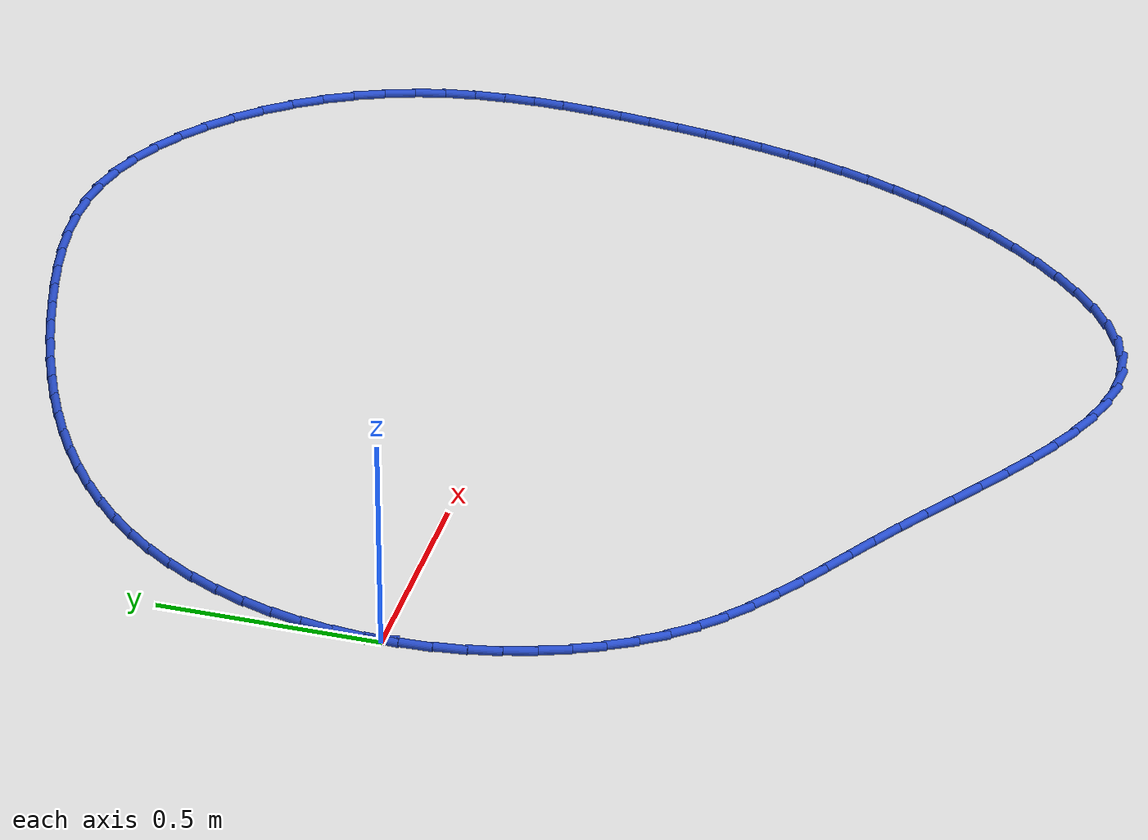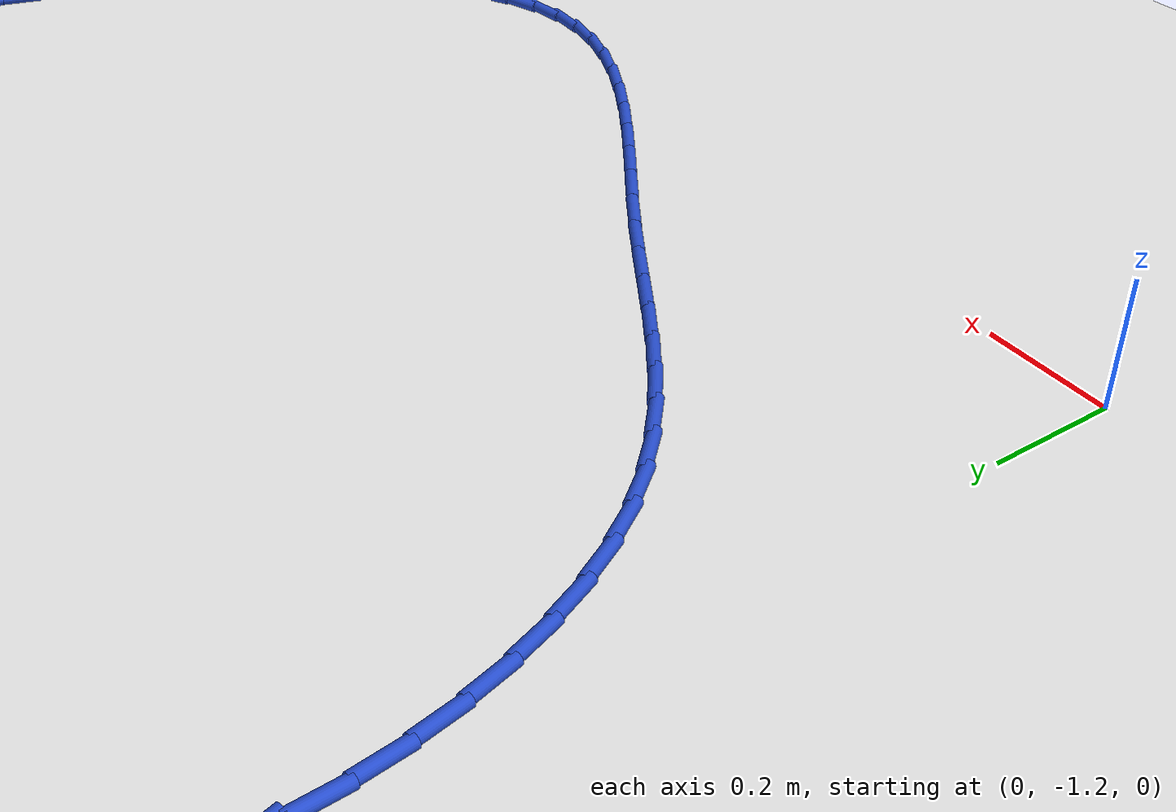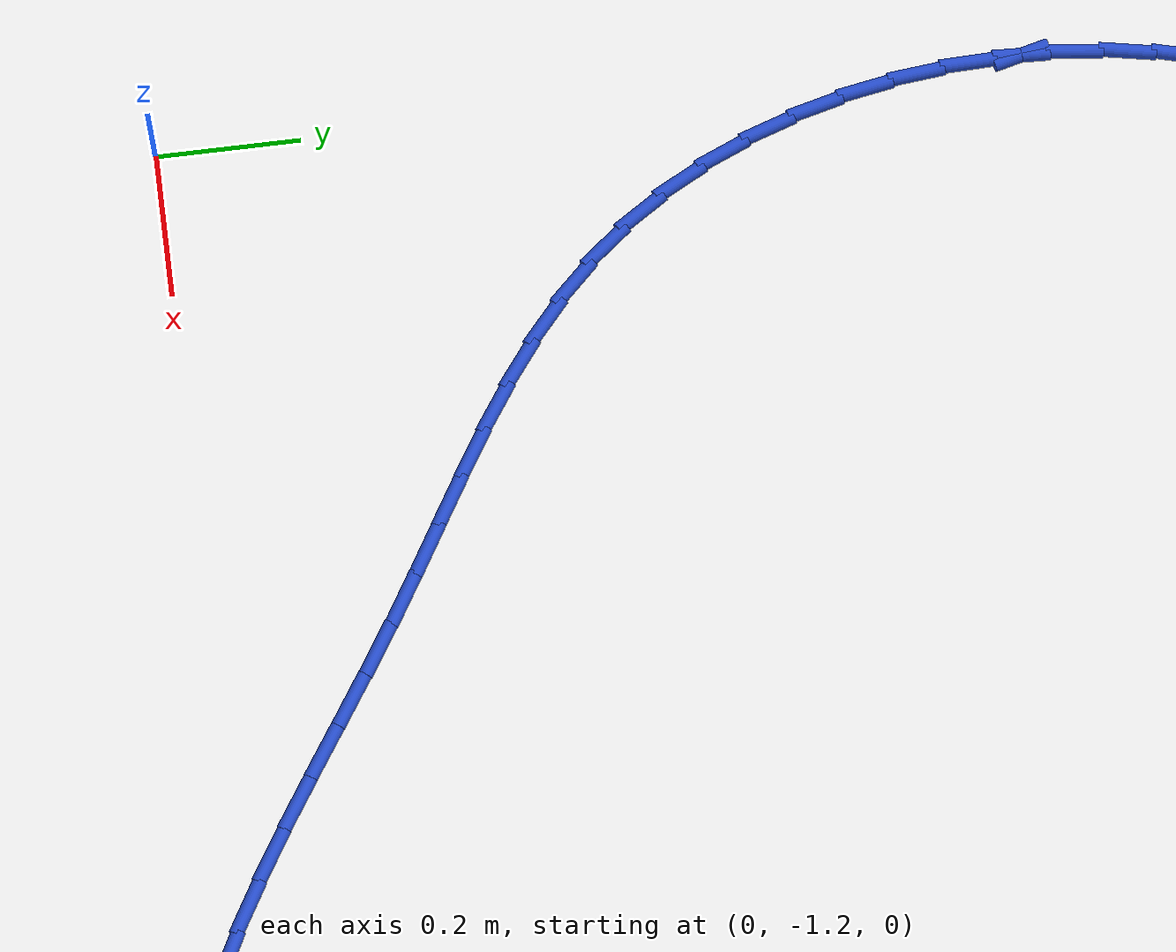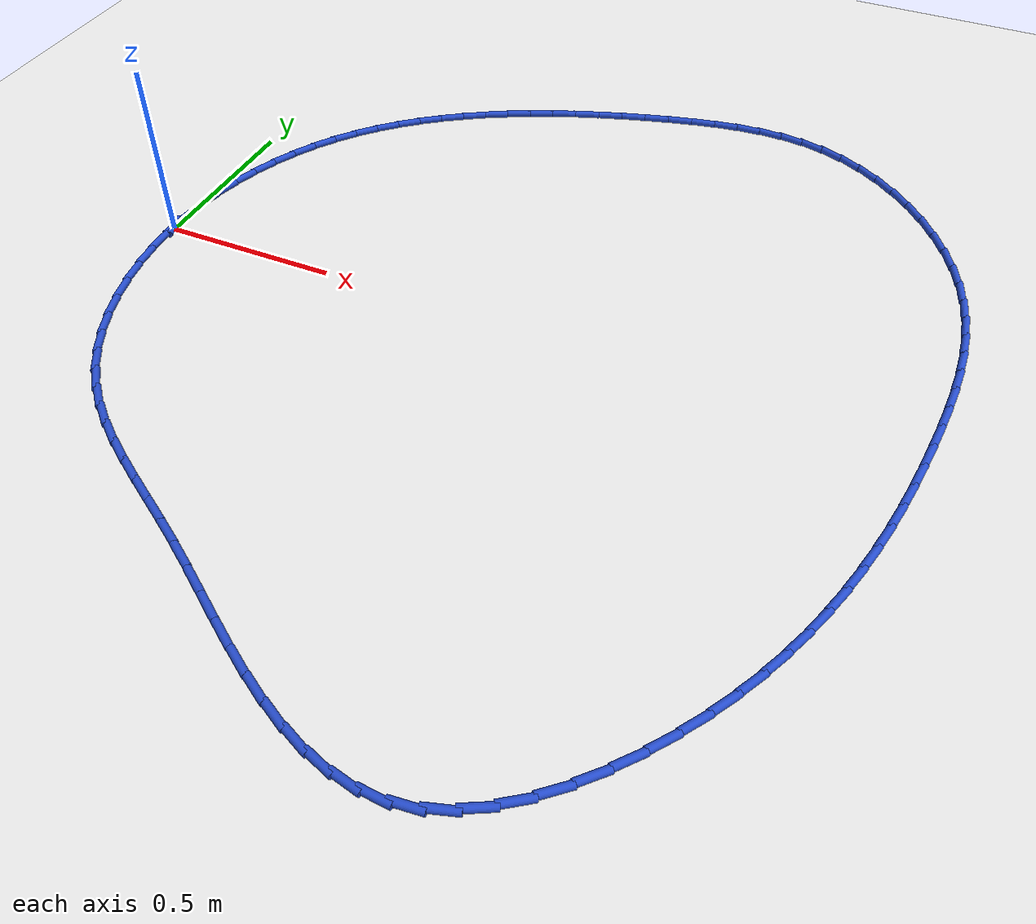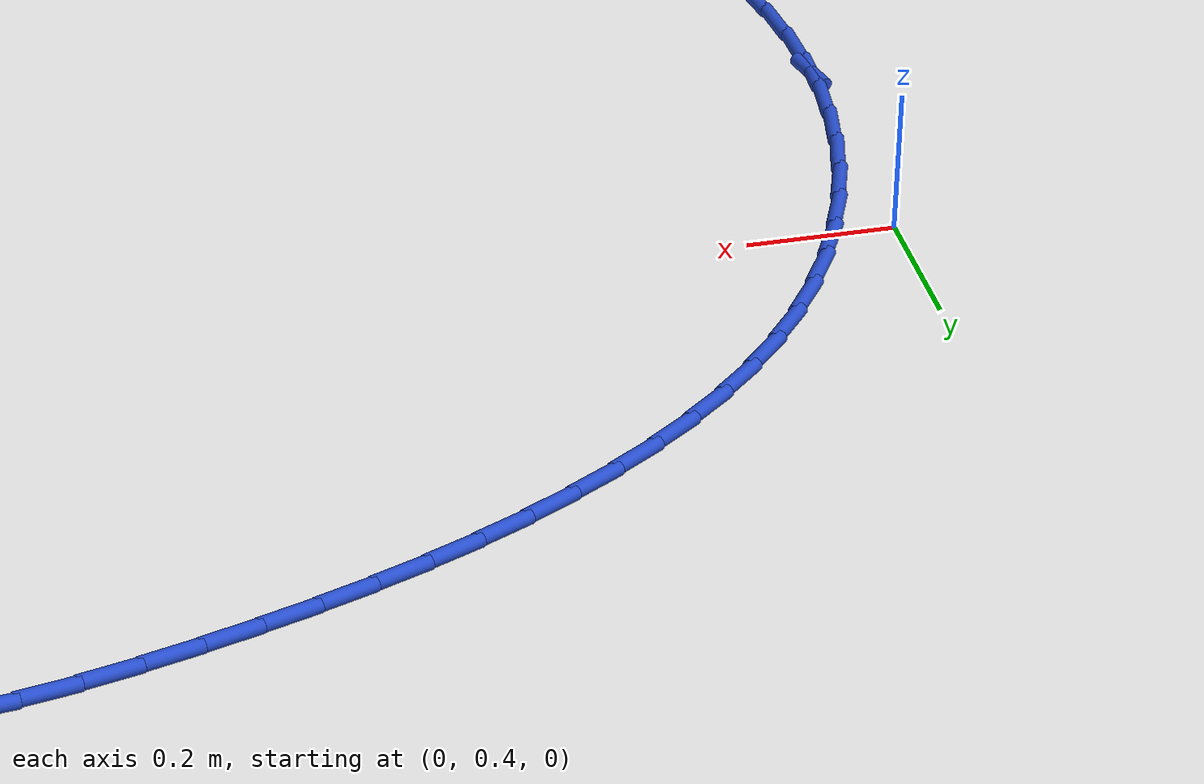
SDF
<sdf version="1.6">
 <world name="default">
  <light name="sun" type="directional">
   <pose>0 0 10 0 -0 0</pose>
   <diffuse>0.8 0.8 0.8 1</diffuse>
   <specular>0.2 0.2 0.2 1</specular>
   <attenuation>
    <range>1000</range>
    <constant>0.9</constant>
    <linear>0.01</linear>
    <quadratic>0.001</quadratic>
   </attenuation>
   <direction>-0.5 0.1 -0.9</direction>
  </light>
  <model name="ground_plane">
   <static>1</static>
   <link name="link">
    <collision name="collision">
     <geometry><plane><normal>0 0 1</normal><size>100 100</size></plane></geometry>
     <surface><friction><ode><mu>100</mu><mu2>50</mu2></ode></friction></surface>
    </collision>
    <visual name="visual">
     <cast_shadows>0</cast_shadows>
     <geometry><plane><normal>0 0 1</normal><size>100 100</size></plane></geometry>
     <material>
      <script><uri>file://media/materials/scripts/gazebo.material</uri><name>Gazebo/WhiteGlow</name></script>
     </material>
    </visual>
   </link>
  </model>
  <gravity>0 0 -9.8</gravity>
  <magnetic_field>6e-06 2.3e-05 -4.2e-05</magnetic_field>
  <atmosphere type="adiabatic"/>
  <physics name="default_physics" default="0" type="ode">
   <max_step_size>0.001</max_step_size>
   <real_time_factor>1</real_time_factor>
   <real_time_update_rate>1000</real_time_update_rate>
  </physics>
  <scene><ambient>0.4 0.4 0.4 1</ambient><background>0.7 0.7 0.7 1</background><shadows>1</shadows></scene>
  <spherical_coordinates>
   <surface_model>EARTH_WGS84</surface_model>
   <latitude_deg>0</latitude_deg>
   <longitude_deg>0</longitude_deg>
   <elevation>0</elevation>
   <heading_deg>0</heading_deg>
  </spherical_coordinates>
  <model name="line">
   <link name="link_0">
    <pose>5.204170427930421e-17 -1.3877787807814457e-16 0.01 0 1.57 1.5282746486067327</pose>
    <collision name="collision">
     <geometry><cylinder><radius>0.01</radius><length>0.08</length></cylinder></geometry>
    </collision>
    <visual name="visual">
     <material>
      <script><name>Gazebo/Blue</name><uri>file://media/materials/scripts/gazebo.material</uri></script>
     </material>
     <geometry><cylinder><radius>0.01</radius><length>0.08</length></cylinder></geometry>
    </visual>
   </link>
   <link name="link_1">
    <pose>0.0031259805209163873 0.07347067203384619 0.01 0 1.57 1.4564774518279162</pose>
    <collision name="collision">
     <geometry><cylinder><radius>0.01</radius><length>0.08</length></cylinder></geometry>
    </collision>
    <visual name="visual">
     <material>
      <script><name>Gazebo/Blue</name><uri>file://media/materials/scripts/gazebo.material</uri></script>
     </material>
     <geometry><cylinder><radius>0.01</radius><length>0.08</length></cylinder></geometry>
    </visual>
   </link>
   <link name="link_2">
    <pose>0.011472570870635196 0.1461638178170815 0.01 0 1.57 1.385574243071723</pose>
    <collision name="collision">
     <geometry><cylinder><radius>0.01</radius><length>0.08</length></cylinder></geometry>
    </collision>
    <visual name="visual">
     <material>
      <script><name>Gazebo/Blue</name><uri>file://media/materials/scripts/gazebo.material</uri></script>
     </material>
     <geometry><cylinder><radius>0.01</radius><length>0.08</length></cylinder></geometry>
    </visual>
   </link>
   <link name="link_3">
    <pose>0.024881129676199827 0.2177258577842038 0.01 0 1.57 1.3152019780598738</pose>
    <collision name="collision">
     <geometry><cylinder><radius>0.01</radius><length>0.08</length></cylinder></geometry>
    </collision>
    <visual name="visual">
     <material>
      <script><name>Gazebo/Blue</name><uri>file://media/materials/scripts/gazebo.material</uri></script>
     </material>
     <geometry><cylinder><radius>0.01</radius><length>0.08</length></cylinder></geometry>
    </visual>
   </link>
   <link name="link_4">
    <pose>0.04319301556465361 0.2878032123697115 0.01 0 1.57 1.244960053088595</pose>
    <collision name="collision">
     <geometry><cylinder><radius>0.01</radius><length>0.08</length></cylinder></geometry>
    </collision>
    <visual name="visual">
     <material>
      <script><name>Gazebo/Blue</name><uri>file://media/materials/scripts/gazebo.material</uri></script>
     </material>
     <geometry><cylinder><radius>0.01</radius><length>0.08</length></cylinder></geometry>
    </visual>
   </link>
   <link name="link_5">
    <pose>0.06624958716303983 0.35604230200810255 0.01 0 1.57 1.1744203381392162</pose>
    <collision name="collision">
     <geometry><cylinder><radius>0.01</radius><length>0.08</length></cylinder></geometry>
    </collision>
    <visual name="visual">
     <material>
      <script><name>Gazebo/Blue</name><uri>file://media/materials/scripts/gazebo.material</uri></script>
     </material>
     <geometry><cylinder><radius>0.01</radius><length>0.08</length></cylinder></geometry>
    </visual>
   </link>
   <link name="link_6">
    <pose>0.09389220309840185 0.42208954713387553 0.01 0 1.57 1.1031366561948694</pose>
    <collision name="collision">
     <geometry><cylinder><radius>0.01</radius><length>0.08</length></cylinder></geometry>
    </collision>
    <visual name="visual">
     <material>
      <script><name>Gazebo/Blue</name><uri>file://media/materials/scripts/gazebo.material</uri></script>
     </material>
     <geometry><cylinder><radius>0.01</radius><length>0.08</length></cylinder></geometry>
    </visual>
   </link>
   <link name="link_7">
    <pose>0.125962221997783 0.4855913681815285 0.01 0 1.57 1.0306548393821087</pose>
    <collision name="collision">
     <geometry><cylinder><radius>0.01</radius><length>0.08</length></cylinder></geometry>
    </collision>
    <visual name="visual">
     <material>
      <script><name>Gazebo/Blue</name><uri>file://media/materials/scripts/gazebo.material</uri></script>
     </material>
     <geometry><cylinder><radius>0.01</radius><length>0.08</length></cylinder></geometry>
    </visual>
   </link>
   <link name="link_8">
    <pose>0.16230100248822654 0.5461941855855594 0.01 0 1.57 0.956543772856191</pose>
    <collision name="collision">
     <geometry><cylinder><radius>0.01</radius><length>0.08</length></cylinder></geometry>
    </collision>
    <visual name="visual">
     <material>
      <script><name>Gazebo/Blue</name><uri>file://media/materials/scripts/gazebo.material</uri></script>
     </material>
     <geometry><cylinder><radius>0.01</radius><length>0.08</length></cylinder></geometry>
    </visual>
   </link>
   <link name="link_9">
    <pose>0.20274952972571073 0.6035462101387121 0.01 0 1.57 0.8822351133639581</pose>
    <collision name="collision">
     <geometry><cylinder><radius>0.01</radius><length>0.08</length></cylinder></geometry>
    </collision>
    <visual name="visual">
     <material>
      <script><name>Gazebo/Blue</name><uri>file://media/materials/scripts/gazebo.material</uri></script>
     </material>
     <geometry><cylinder><radius>0.01</radius><length>0.08</length></cylinder></geometry>
    </visual>
   </link>
   <link name="link_10">
    <pose>0.24711486292834084 0.65745828794414 0.01 0 1.57 0.8111999064492</pose>
    <collision name="collision">
     <geometry><cylinder><radius>0.01</radius><length>0.08</length></cylinder></geometry>
    </collision>
    <visual name="visual">
     <material>
      <script><name>Gazebo/Blue</name><uri>file://media/materials/scripts/gazebo.material</uri></script>
     </material>
     <geometry><cylinder><radius>0.01</radius><length>0.08</length></cylinder></geometry>
    </visual>
   </link>
   <link name="link_11">
    <pose>0.2951434990279077 0.7080315906450225 0.01 0 1.57 0.74426242111142</pose>
    <collision name="collision">
     <geometry><cylinder><radius>0.01</radius><length>0.08</length></cylinder></geometry>
    </collision>
    <visual name="visual">
     <material>
      <script><name>Gazebo/Blue</name><uri>file://media/materials/scripts/gazebo.material</uri></script>
     </material>
     <geometry><cylinder><radius>0.01</radius><length>0.08</length></cylinder></geometry>
    </visual>
   </link>
   <link name="link_12">
    <pose>0.34657566671254064 0.7553973388033759 0.01 0 1.57 0.6817254920975843</pose>
    <collision name="collision">
     <geometry><cylinder><radius>0.01</radius><length>0.08</length></cylinder></geometry>
    </collision>
    <visual name="visual">
     <material>
      <script><name>Gazebo/Blue</name><uri>file://media/materials/scripts/gazebo.material</uri></script>
     </material>
     <geometry><cylinder><radius>0.01</radius><length>0.08</length></cylinder></geometry>
    </visual>
   </link>
   <link name="link_13">
    <pose>0.40115159467036915 0.799686752981217 0.01 0 1.57 0.6237153595870962</pose>
    <collision name="collision">
     <geometry><cylinder><radius>0.01</radius><length>0.08</length></cylinder></geometry>
    </collision>
    <visual name="visual">
     <material>
      <script><name>Gazebo/Blue</name><uri>file://media/materials/scripts/gazebo.material</uri></script>
     </material>
     <geometry><cylinder><radius>0.01</radius><length>0.08</length></cylinder></geometry>
    </visual>
   </link>
   <link name="link_14">
    <pose>0.4586115115895223 0.8410310537405623 0.01 0 1.57 0.570216642949273</pose>
    <collision name="collision">
     <geometry><cylinder><radius>0.01</radius><length>0.08</length></cylinder></geometry>
    </collision>
    <visual name="visual">
     <material>
      <script><name>Gazebo/Blue</name><uri>file://media/materials/scripts/gazebo.material</uri></script>
     </material>
     <geometry><cylinder><radius>0.01</radius><length>0.08</length></cylinder></geometry>
    </visual>
   </link>
   <link name="link_15">
    <pose>0.5186956461581296 0.8795614616434282 0.01 0 1.57 0.5211095307602811</pose>
    <collision name="collision">
     <geometry><cylinder><radius>0.01</radius><length>0.08</length></cylinder></geometry>
    </collision>
    <visual name="visual">
     <material>
      <script><name>Gazebo/Blue</name><uri>file://media/materials/scripts/gazebo.material</uri></script>
     </material>
     <geometry><cylinder><radius>0.01</radius><length>0.08</length></cylinder></geometry>
    </visual>
   </link>
   <link name="link_16">
    <pose>0.5811442270643205 0.9154091972518315 0.01 0 1.57 0.47620407167577583</pose>
    <collision name="collision">
     <geometry><cylinder><radius>0.01</radius><length>0.08</length></cylinder></geometry>
    </collision>
    <visual name="visual">
     <material>
      <script><name>Gazebo/Blue</name><uri>file://media/materials/scripts/gazebo.material</uri></script>
     </material>
     <geometry><cylinder><radius>0.01</radius><length>0.08</length></cylinder></geometry>
    </visual>
   </link>
   <link name="link_17">
    <pose>0.6456974829962242 0.9487054811277882 0.01 0 1.57 0.4352689224941862</pose>
    <collision name="collision">
     <geometry><cylinder><radius>0.01</radius><length>0.08</length></cylinder></geometry>
    </collision>
    <visual name="visual">
     <material>
      <script><name>Gazebo/Blue</name><uri>file://media/materials/scripts/gazebo.material</uri></script>
     </material>
     <geometry><cylinder><radius>0.01</radius><length>0.08</length></cylinder></geometry>
    </visual>
   </link>
   <link name="link_18">
    <pose>0.71209564264197 0.9795815338333156 0.01 0 1.57 0.39805378848423967</pose>
    <collision name="collision">
     <geometry><cylinder><radius>0.01</radius><length>0.08</length></cylinder></geometry>
    </collision>
    <visual name="visual">
     <material>
      <script><name>Gazebo/Blue</name><uri>file://media/materials/scripts/gazebo.material</uri></script>
     </material>
     <geometry><cylinder><radius>0.01</radius><length>0.08</length></cylinder></geometry>
    </visual>
   </link>
   <link name="link_19">
    <pose>0.7800789346896874 1.0081685759304293 0.01 0 1.57 0.36430594841003583</pose>
    <collision name="collision">
     <geometry><cylinder><radius>0.01</radius><length>0.08</length></cylinder></geometry>
    </collision>
    <visual name="visual">
     <material>
      <script><name>Gazebo/Blue</name><uri>file://media/materials/scripts/gazebo.material</uri></script>
     </material>
     <geometry><cylinder><radius>0.01</radius><length>0.08</length></cylinder></geometry>
    </visual>
   </link>
   <link name="link_20">
    <pose>0.8493875878275057 1.034597827981147 0.01 0 1.57 0.3337818168983868</pose>
    <collision name="collision">
     <geometry><cylinder><radius>0.01</radius><length>0.08</length></cylinder></geometry>
    </collision>
    <visual name="visual">
     <material>
      <script><name>Gazebo/Blue</name><uri>file://media/materials/scripts/gazebo.material</uri></script>
     </material>
     <geometry><cylinder><radius>0.01</radius><length>0.08</length></cylinder></geometry>
    </visual>
   </link>
   <link name="link_21">
    <pose>0.919761830743554 1.059000510547484 0.01 0 1.57 0.30625465897065135</pose>
    <collision name="collision">
     <geometry><cylinder><radius>0.01</radius><length>0.08</length></cylinder></geometry>
    </collision>
    <visual name="visual">
     <material>
      <script><name>Gazebo/Blue</name><uri>file://media/materials/scripts/gazebo.material</uri></script>
     </material>
     <geometry><cylinder><radius>0.01</radius><length>0.08</length></cylinder></geometry>
    </visual>
   </link>
   <link name="link_22">
    <pose>0.9909418921259621 1.0815078441914578 0.01 0 1.57 0.2815195139172139</pose>
    <collision name="collision">
     <geometry><cylinder><radius>0.01</radius><length>0.08</length></cylinder></geometry>
    </collision>
    <visual name="visual">
     <material>
      <script><name>Gazebo/Blue</name><uri>file://media/materials/scripts/gazebo.material</uri></script>
     </material>
     <geometry><cylinder><radius>0.01</radius><length>0.08</length></cylinder></geometry>
    </visual>
   </link>
   <link name="link_23">
    <pose>1.0626680006628593 1.1022510494750846 0.01 0 1.57 0.2574677701609442</pose>
    <collision name="collision">
     <geometry><cylinder><radius>0.01</radius><length>0.08</length></cylinder></geometry>
    </collision>
    <visual name="visual">
     <material>
      <script><name>Gazebo/Blue</name><uri>file://media/materials/scripts/gazebo.material</uri></script>
     </material>
     <geometry><cylinder><radius>0.01</radius><length>0.08</length></cylinder></geometry>
    </visual>
   </link>
   <link name="link_24">
    <pose>1.134681080705358 1.1212129527023074 0.01 0 1.57 0.22415353122111004</pose>
    <collision name="collision">
     <geometry><cylinder><radius>0.01</radius><length>0.08</length></cylinder></geometry>
    </collision>
    <visual name="visual">
     <material>
      <script><name>Gazebo/Blue</name><uri>file://media/materials/scripts/gazebo.material</uri></script>
     </material>
     <geometry><cylinder><radius>0.01</radius><length>0.08</length></cylinder></geometry>
    </visual>
   </link>
   <link name="link_25">
    <pose>1.206725518157257 1.1376379844956195 0.01 0 1.57 0.17776304194682113</pose>
    <collision name="collision">
     <geometry><cylinder><radius>0.01</radius><length>0.08</length></cylinder></geometry>
    </collision>
    <visual name="visual">
     <material>
      <script><name>Gazebo/Blue</name><uri>file://media/materials/scripts/gazebo.material</uri></script>
     </material>
     <geometry><cylinder><radius>0.01</radius><length>0.08</length></cylinder></geometry>
    </visual>
   </link>
   <link name="link_26">
    <pose>1.2785467735138696 1.1505413506745805 0.01 0 1.57 0.11715683430781651</pose>
    <collision name="collision">
     <geometry><cylinder><radius>0.01</radius><length>0.08</length></cylinder></geometry>
    </collision>
    <visual name="visual">
     <material>
      <script><name>Gazebo/Blue</name><uri>file://media/materials/scripts/gazebo.material</uri></script>
     </material>
     <geometry><cylinder><radius>0.01</radius><length>0.08</length></cylinder></geometry>
    </visual>
   </link>
   <link name="link_27">
    <pose>1.3498903076035111 1.1589381860244536 0.01 0 1.57 0.041123762725608665</pose>
    <collision name="collision">
     <geometry><cylinder><radius>0.01</radius><length>0.08</length></cylinder></geometry>
    </collision>
    <visual name="visual">
     <material>
      <script><name>Gazebo/Blue</name><uri>file://media/materials/scripts/gazebo.material</uri></script>
     </material>
     <geometry><cylinder><radius>0.01</radius><length>0.08</length></cylinder></geometry>
    </visual>
   </link>
   <link name="link_28">
    <pose>1.4205015812544988 1.1618436253305033 0.01 0 1.57 -0.05124198212710654</pose>
    <collision name="collision">
     <geometry><cylinder><radius>0.01</radius><length>0.08</length></cylinder></geometry>
    </collision>
    <visual name="visual">
     <material>
      <script><name>Gazebo/Blue</name><uri>file://media/materials/scripts/gazebo.material</uri></script>
     </material>
     <geometry><cylinder><radius>0.01</radius><length>0.08</length></cylinder></geometry>
    </visual>
   </link>
   <link name="link_29">
    <pose>1.4901260552951479 1.1582728033779928 0.01 0 1.57 -0.15994747885380636</pose>
    <collision name="collision">
     <geometry><cylinder><radius>0.01</radius><length>0.08</length></cylinder></geometry>
    </collision>
    <visual name="visual">
     <material>
      <script><name>Gazebo/Blue</name><uri>file://media/materials/scripts/gazebo.material</uri></script>
     </material>
     <geometry><cylinder><radius>0.01</radius><length>0.08</length></cylinder></geometry>
    </visual>
   </link>
   <link name="link_30">
    <pose>1.5585091905537758 1.1472408549521862 0.01 0 1.57 -0.28207133014288555</pose>
    <collision name="collision">
     <geometry><cylinder><radius>0.01</radius><length>0.08</length></cylinder></geometry>
    </collision>
    <visual name="visual">
     <material>
      <script><name>Gazebo/Blue</name><uri>file://media/materials/scripts/gazebo.material</uri></script>
     </material>
     <geometry><cylinder><radius>0.01</radius><length>0.08</length></cylinder></geometry>
    </visual>
   </link>
   <link name="link_31">
    <pose>1.6253840059137574 1.127860649239747 0.01 0 1.57 -0.4016474988131272</pose>
    <collision name="collision">
     <geometry><cylinder><radius>0.01</radius><length>0.08</length></cylinder></geometry>
    </collision>
    <visual name="visual">
     <material>
      <script><name>Gazebo/Blue</name><uri>file://media/materials/scripts/gazebo.material</uri></script>
     </material>
     <geometry><cylinder><radius>0.01</radius><length>0.08</length></cylinder></geometry>
    </visual>
   </link>
   <link name="link_32">
    <pose>1.690353589624437 1.100265691091654 0.01 0 1.57 -0.5107105799660021</pose>
    <collision name="collision">
     <geometry><cylinder><radius>0.01</radius><length>0.08</length></cylinder></geometry>
    </collision>
    <visual name="visual">
     <material>
      <script><name>Gazebo/Blue</name><uri>file://media/materials/scripts/gazebo.material</uri></script>
     </material>
     <geometry><cylinder><radius>0.01</radius><length>0.08</length></cylinder></geometry>
    </visual>
   </link>
   <link name="link_33">
    <pose>1.7529436968279741 1.0651969550892868 0.01 0 1.57 -0.6104869087190389</pose>
    <collision name="collision">
     <geometry><cylinder><radius>0.01</radius><length>0.08</length></cylinder></geometry>
    </collision>
    <visual name="visual">
     <material>
      <script><name>Gazebo/Blue</name><uri>file://media/materials/scripts/gazebo.material</uri></script>
     </material>
     <geometry><cylinder><radius>0.01</radius><length>0.08</length></cylinder></geometry>
    </visual>
   </link>
   <link name="link_34">
    <pose>1.8126790564329207 1.0234034771201719 0.01 0 1.57 -0.7026864456503243</pose>
    <collision name="collision">
     <geometry><cylinder><radius>0.01</radius><length>0.08</length></cylinder></geometry>
    </collision>
    <visual name="visual">
     <material>
      <script><name>Gazebo/Blue</name><uri>file://media/materials/scripts/gazebo.material</uri></script>
     </material>
     <geometry><cylinder><radius>0.01</radius><length>0.08</length></cylinder></geometry>
    </visual>
   </link>
   <link name="link_35">
    <pose>1.8690843973478293 0.9756342930718348 0.01 0 1.57 -0.7891464266619932</pose>
    <collision name="collision">
     <geometry><cylinder><radius>0.01</radius><length>0.08</length></cylinder></geometry>
    </collision>
    <visual name="visual">
     <material>
      <script><name>Gazebo/Blue</name><uri>file://media/materials/scripts/gazebo.material</uri></script>
     </material>
     <geometry><cylinder><radius>0.01</radius><length>0.08</length></cylinder></geometry>
    </visual>
   </link>
   <link name="link_36">
    <pose>1.9216844484812525 0.9226384388318032 0.01 0 1.57 -0.8717106496504525</pose>
    <collision name="collision">
     <geometry><cylinder><radius>0.01</radius><length>0.08</length></cylinder></geometry>
    </collision>
    <visual name="visual">
     <material>
      <script><name>Gazebo/Blue</name><uri>file://media/materials/scripts/gazebo.material</uri></script>
     </material>
     <geometry><cylinder><radius>0.01</radius><length>0.08</length></cylinder></geometry>
    </visual>
   </link>
   <link name="link_37">
    <pose>1.9700039387417436 0.8651649502876019 0.01 0 1.57 -0.9521945838586038</pose>
    <collision name="collision">
     <geometry><cylinder><radius>0.01</radius><length>0.08</length></cylinder></geometry>
    </collision>
    <visual name="visual">
     <material>
      <script><name>Gazebo/Blue</name><uri>file://media/materials/scripts/gazebo.material</uri></script>
     </material>
     <geometry><cylinder><radius>0.01</radius><length>0.08</length></cylinder></geometry>
    </visual>
   </link>
   <link name="link_38">
    <pose>2.013567597037855 0.8039628633267578 0.01 0 1.57 -1.0324005913723173</pose>
    <collision name="collision">
     <geometry><cylinder><radius>0.01</radius><length>0.08</length></cylinder></geometry>
    </collision>
    <visual name="visual">
     <material>
      <script><name>Gazebo/Blue</name><uri>file://media/materials/scripts/gazebo.material</uri></script>
     </material>
     <geometry><cylinder><radius>0.01</radius><length>0.08</length></cylinder></geometry>
    </visual>
   </link>
   <link name="link_39">
    <pose>2.051900152278139 0.7397812138367974 0.01 0 1.57 -1.1141586374636674</pose>
    <collision name="collision">
     <geometry><cylinder><radius>0.01</radius><length>0.08</length></cylinder></geometry>
    </collision>
    <visual name="visual">
     <material>
      <script><name>Gazebo/Blue</name><uri>file://media/materials/scripts/gazebo.material</uri></script>
     </material>
     <geometry><cylinder><radius>0.01</radius><length>0.08</length></cylinder></geometry>
    </visual>
   </link>
   <link name="link_40">
    <pose>2.084526333371148 0.6733690377052464 0.01 0 1.57 -1.1992003343789637</pose>
    <collision name="collision">
     <geometry><cylinder><radius>0.01</radius><length>0.08</length></cylinder></geometry>
    </collision>
    <visual name="visual">
     <material>
      <script><name>Gazebo/Blue</name><uri>file://media/materials/scripts/gazebo.material</uri></script>
     </material>
     <geometry><cylinder><radius>0.01</radius><length>0.08</length></cylinder></geometry>
    </visual>
   </link>
   <link name="link_41">
    <pose>2.1109881745813 0.6054659977010682 0.01 0 1.57 -1.283935200608638</pose>
    <collision name="collision">
     <geometry><cylinder><radius>0.01</radius><length>0.08</length></cylinder></geometry>
    </collision>
    <visual name="visual">
     <material>
      <script><name>Gazebo/Blue</name><uri>file://media/materials/scripts/gazebo.material</uri></script>
     </material>
     <geometry><cylinder><radius>0.01</radius><length>0.08</length></cylinder></geometry>
    </visual>
   </link>
   <link name="link_42">
    <pose>2.13131960460642 0.5365453312806873 0.01 0 1.57 -1.3619491720528112</pose>
    <collision name="collision">
     <geometry><cylinder><radius>0.01</radius><length>0.08</length></cylinder></geometry>
    </collision>
    <visual name="visual">
     <material>
      <script><name>Gazebo/Blue</name><uri>file://media/materials/scripts/gazebo.material</uri></script>
     </material>
     <geometry><cylinder><radius>0.01</radius><length>0.08</length></cylinder></geometry>
    </visual>
   </link>
   <link name="link_43">
    <pose>2.1461050488459885 0.4667821097782295 0.01 0 1.57 -1.431833304214325</pose>
    <collision name="collision">
     <geometry><cylinder><radius>0.01</radius><length>0.08</length></cylinder></geometry>
    </collision>
    <visual name="visual">
     <material>
      <script><name>Gazebo/Blue</name><uri>file://media/materials/scripts/gazebo.material</uri></script>
     </material>
     <geometry><cylinder><radius>0.01</radius><length>0.08</length></cylinder></geometry>
    </visual>
   </link>
   <link name="link_44">
    <pose>2.155958005076219 0.39633565802505133 0.01 0 1.57 -1.4929780508990451</pose>
    <collision name="collision">
     <geometry><cylinder><radius>0.01</radius><length>0.08</length></cylinder></geometry>
    </collision>
    <visual name="visual">
     <material>
      <script><name>Gazebo/Blue</name><uri>file://media/materials/scripts/gazebo.material</uri></script>
     </material>
     <geometry><cylinder><radius>0.01</radius><length>0.08</length></cylinder></geometry>
    </visual>
   </link>
   <link name="link_45">
    <pose>2.1614919710733287 0.32536530085250903 0.01 0 1.57 -1.5451697080182984</pose>
    <collision name="collision">
     <geometry><cylinder><radius>0.01</radius><length>0.08</length></cylinder></geometry>
    </collision>
    <visual name="visual">
     <material>
      <script><name>Gazebo/Blue</name><uri>file://media/materials/scripts/gazebo.material</uri></script>
     </material>
     <geometry><cylinder><radius>0.01</radius><length>0.08</length></cylinder></geometry>
    </visual>
   </link>
   <link name="link_46">
    <pose>2.163320444613532 0.2540303630919587 0.01 0 1.57 1.5531364670164305</pose>
    <collision name="collision">
     <geometry><cylinder><radius>0.01</radius><length>0.08</length></cylinder></geometry>
    </collision>
    <visual name="visual">
     <material>
      <script><name>Gazebo/Blue</name><uri>file://media/materials/scripts/gazebo.material</uri></script>
     </material>
     <geometry><cylinder><radius>0.01</radius><length>0.08</length></cylinder></geometry>
    </visual>
   </link>
   <link name="link_47">
    <pose>2.162056923473044 0.1824901695747564 0.01 0 1.57 1.5185709081920795</pose>
    <collision name="collision">
     <geometry><cylinder><radius>0.01</radius><length>0.08</length></cylinder></geometry>
    </collision>
    <visual name="visual">
     <material>
      <script><name>Gazebo/Blue</name><uri>file://media/materials/scripts/gazebo.material</uri></script>
     </material>
     <geometry><cylinder><radius>0.01</radius><length>0.08</length></cylinder></geometry>
    </visual>
   </link>
   <link name="link_48">
    <pose>2.1583149054280817 0.11090404513225881 0.01 0 1.57 1.4925069305116105</pose>
    <collision name="collision">
     <geometry><cylinder><radius>0.01</radius><length>0.08</length></cylinder></geometry>
    </collision>
    <visual name="visual">
     <material>
      <script><name>Gazebo/Blue</name><uri>file://media/materials/scripts/gazebo.material</uri></script>
     </material>
     <geometry><cylinder><radius>0.01</radius><length>0.08</length></cylinder></geometry>
    </visual>
   </link>
   <link name="link_49">
    <pose>2.1527078882548594 0.03943131459582119 0.01 0 1.57 1.4740513847124126</pose>
    <collision name="collision">
     <geometry><cylinder><radius>0.01</radius><length>0.08</length></cylinder></geometry>
    </collision>
    <visual name="visual">
     <material>
      <script><name>Gazebo/Blue</name><uri>file://media/materials/scripts/gazebo.material</uri></script>
     </material>
     <geometry><cylinder><radius>0.01</radius><length>0.08</length></cylinder></geometry>
    </visual>
   </link>
   <link name="link_50">
    <pose>2.145797348805127 -0.03177619157703565 0.01 0 1.57 1.456381025645525</pose>
    <collision name="collision">
     <geometry><cylinder><radius>0.01</radius><length>0.08</length></cylinder></geometry>
    </collision>
    <visual name="visual">
     <material>
      <script><name>Gazebo/Blue</name><uri>file://media/materials/scripts/gazebo.material</uri></script>
     </material>
     <geometry><cylinder><radius>0.01</radius><length>0.08</length></cylinder></geometry>
    </visual>
   </link>
   <link name="link_51">
    <pose>2.1376541870035015 -0.10263731769908503 0.01 0 1.57 1.4357621455923701</pose>
    <collision name="collision">
     <geometry><cylinder><radius>0.01</radius><length>0.08</length></cylinder></geometry>
    </collision>
    <visual name="visual">
     <material>
      <script><name>Gazebo/Blue</name><uri>file://media/materials/scripts/gazebo.material</uri></script>
     </material>
     <geometry><cylinder><radius>0.01</radius><length>0.08</length></cylinder></geometry>
    </visual>
   </link>
   <link name="link_52">
    <pose>2.128079735618127 -0.1731097431685043 0.01 0 1.57 1.4121340106648255</pose>
    <collision name="collision">
     <geometry><cylinder><radius>0.01</radius><length>0.08</length></cylinder></geometry>
    </collision>
    <visual name="visual">
     <material>
      <script><name>Gazebo/Blue</name><uri>file://media/materials/scripts/gazebo.material</uri></script>
     </material>
     <geometry><cylinder><radius>0.01</radius><length>0.08</length></cylinder></geometry>
    </visual>
   </link>
   <link name="link_53">
    <pose>2.1168725399724533 -0.2431515489555842 0.01 0 1.57 1.3854878548615126</pose>
    <collision name="collision">
     <geometry><cylinder><radius>0.01</radius><length>0.08</length></cylinder></geometry>
    </collision>
    <visual name="visual">
     <material>
      <script><name>Gazebo/Blue</name><uri>file://media/materials/scripts/gazebo.material</uri></script>
     </material>
     <geometry><cylinder><radius>0.01</radius><length>0.08</length></cylinder></geometry>
    </visual>
   </link>
   <link name="link_54">
    <pose>2.103831145389932 -0.3127208160306157 0.01 0 1.57 1.3558351742822496</pose>
    <collision name="collision">
     <geometry><cylinder><radius>0.01</radius><length>0.08</length></cylinder></geometry>
    </collision>
    <visual name="visual">
     <material>
      <script><name>Gazebo/Blue</name><uri>file://media/materials/scripts/gazebo.material</uri></script>
     </material>
     <geometry><cylinder><radius>0.01</radius><length>0.08</length></cylinder></geometry>
    </visual>
   </link>
   <link name="link_55">
    <pose>2.088754097194014 -0.3817756253638894 0.01 0 1.57 1.3232149477645139</pose>
    <collision name="collision">
     <geometry><cylinder><radius>0.01</radius><length>0.08</length></cylinder></geometry>
    </collision>
    <visual name="visual">
     <material>
      <script><name>Gazebo/Blue</name><uri>file://media/materials/scripts/gazebo.material</uri></script>
     </material>
     <geometry><cylinder><radius>0.01</radius><length>0.08</length></cylinder></geometry>
    </visual>
   </link>
   <link name="link_56">
    <pose>2.0714399407081485 -0.45027405792569625 0.01 0 1.57 1.2877011878988722</pose>
    <collision name="collision">
     <geometry><cylinder><radius>0.01</radius><length>0.08</length></cylinder></geometry>
    </collision>
    <visual name="visual">
     <material>
      <script><name>Gazebo/Blue</name><uri>file://media/materials/scripts/gazebo.material</uri></script>
     </material>
     <geometry><cylinder><radius>0.01</radius><length>0.08</length></cylinder></geometry>
    </visual>
   </link>
   <link name="link_57">
    <pose>2.0516872212557877 -0.518174194686327 0.01 0 1.57 1.2494102713392787</pose>
    <collision name="collision">
     <geometry><cylinder><radius>0.01</radius><length>0.08</length></cylinder></geometry>
    </collision>
    <visual name="visual">
     <material>
      <script><name>Gazebo/Blue</name><uri>file://media/materials/scripts/gazebo.material</uri></script>
     </material>
     <geometry><cylinder><radius>0.01</radius><length>0.08</length></cylinder></geometry>
    </visual>
   </link>
   <link name="link_58">
    <pose>2.0292944841603817 -0.5854341166160719 0.01 0 1.57 1.2085073028194984</pose>
    <collision name="collision">
     <geometry><cylinder><radius>0.01</radius><length>0.08</length></cylinder></geometry>
    </collision>
    <visual name="visual">
     <material>
      <script><name>Gazebo/Blue</name><uri>file://media/materials/scripts/gazebo.material</uri></script>
     </material>
     <geometry><cylinder><radius>0.01</radius><length>0.08</length></cylinder></geometry>
    </visual>
   </link>
   <link name="link_59">
    <pose>2.00406027474538 -0.6520119046852229 0.01 0 1.57 1.16521061592618</pose>
    <collision name="collision">
     <geometry><cylinder><radius>0.01</radius><length>0.08</length></cylinder></geometry>
    </collision>
    <visual name="visual">
     <material>
      <script><name>Gazebo/Blue</name><uri>file://media/materials/scripts/gazebo.material</uri></script>
     </material>
     <geometry><cylinder><radius>0.01</radius><length>0.08</length></cylinder></geometry>
    </visual>
   </link>
   <link name="link_60">
    <pose>1.9757831383342346 -0.7178656398640701 0.01 0 1.57 1.1197934641353782</pose>
    <collision name="collision">
     <geometry><cylinder><radius>0.01</radius><length>0.08</length></cylinder></geometry>
    </collision>
    <visual name="visual">
     <material>
      <script><name>Gazebo/Blue</name><uri>file://media/materials/scripts/gazebo.material</uri></script>
     </material>
     <geometry><cylinder><radius>0.01</radius><length>0.08</length></cylinder></geometry>
    </visual>
   </link>
   <link name="link_61">
    <pose>1.9442616202503953 -0.7829534031229047 0.01 0 1.57 1.0725820669029316</pose>
    <collision name="collision">
     <geometry><cylinder><radius>0.01</radius><length>0.08</length></cylinder></geometry>
    </collision>
    <visual name="visual">
     <material>
      <script><name>Gazebo/Blue</name><uri>file://media/materials/scripts/gazebo.material</uri></script>
     </material>
     <geometry><cylinder><radius>0.01</radius><length>0.08</length></cylinder></geometry>
    </visual>
   </link>
   <link name="link_62">
    <pose>1.909294265817313 -0.8472332754320171 0.01 0 1.57 1.023949484833783</pose>
    <collision name="collision">
     <geometry><cylinder><radius>0.01</radius><length>0.08</length></cylinder></geometry>
    </collision>
    <visual name="visual">
     <material>
      <script><name>Gazebo/Blue</name><uri>file://media/materials/scripts/gazebo.material</uri></script>
     </material>
     <geometry><cylinder><radius>0.01</radius><length>0.08</length></cylinder></geometry>
    </visual>
   </link>
   <link name="link_63">
    <pose>1.8706796203584384 -0.9106633377616982 0.01 0 1.57 0.9742964860338689</pose>
    <collision name="collision">
     <geometry><cylinder><radius>0.01</radius><length>0.08</length></cylinder></geometry>
    </collision>
    <visual name="visual">
     <material>
      <script><name>Gazebo/Blue</name><uri>file://media/materials/scripts/gazebo.material</uri></script>
     </material>
     <geometry><cylinder><radius>0.01</radius><length>0.08</length></cylinder></geometry>
    </visual>
   </link>
   <link name="link_64">
    <pose>1.8282172730756507 -0.9731989483044216 0.01 0 1.57 0.922240537208902</pose>
    <collision name="collision">
     <geometry><cylinder><radius>0.01</radius><length>0.08</length></cylinder></geometry>
    </collision>
    <visual name="visual">
     <material>
      <script><name>Gazebo/Blue</name><uri>file://media/materials/scripts/gazebo.material</uri></script>
     </material>
     <geometry><cylinder><radius>0.01</radius><length>0.08</length></cylinder></geometry>
    </visual>
   </link>
   <link name="link_65">
    <pose>1.7818862217521059 -1.0343275087435797 0.01 0 1.57 0.8627485491101605</pose>
    <collision name="collision">
     <geometry><cylinder><radius>0.01</radius><length>0.08</length></cylinder></geometry>
    </collision>
    <visual name="visual">
     <material>
      <script><name>Gazebo/Blue</name><uri>file://media/materials/scripts/gazebo.material</uri></script>
     </material>
     <geometry><cylinder><radius>0.01</radius><length>0.08</length></cylinder></geometry>
    </visual>
   </link>
   <link name="link_66">
    <pose>1.7320469039676152 -1.0925415004839725 0.01 0 1.57 0.7922107477221448</pose>
    <collision name="collision">
     <geometry><cylinder><radius>0.01</radius><length>0.08</length></cylinder></geometry>
    </collision>
    <visual name="visual">
     <material>
      <script><name>Gazebo/Blue</name><uri>file://media/materials/scripts/gazebo.material</uri></script>
     </material>
     <geometry><cylinder><radius>0.01</radius><length>0.08</length></cylinder></geometry>
    </visual>
   </link>
   <link name="link_67">
    <pose>1.6791085689390475 -1.1462060881481224 0.01 0 1.57 0.7065408160806036</pose>
    <collision name="collision">
     <geometry><cylinder><radius>0.01</radius><length>0.08</length></cylinder></geometry>
    </collision>
    <visual name="visual">
     <material>
      <script><name>Gazebo/Blue</name><uri>file://media/materials/scripts/gazebo.material</uri></script>
     </material>
     <geometry><cylinder><radius>0.01</radius><length>0.08</length></cylinder></geometry>
    </visual>
   </link>
   <link name="link_68">
    <pose>1.6234804658832742 -1.193686436358551 0.01 0 1.57 0.6005156681563057</pose>
    <collision name="collision">
     <geometry><cylinder><radius>0.01</radius><length>0.08</length></cylinder></geometry>
    </collision>
    <visual name="visual">
     <material>
      <script><name>Gazebo/Blue</name><uri>file://media/materials/scripts/gazebo.material</uri></script>
     </material>
     <geometry><cylinder><radius>0.01</radius><length>0.08</length></cylinder></geometry>
    </visual>
   </link>
   <link name="link_69">
    <pose>1.5655718440171649 -1.2333477097377805 0.01 0 1.57 0.46788639631838264</pose>
    <collision name="collision">
     <geometry><cylinder><radius>0.01</radius><length>0.08</length></cylinder></geometry>
    </collision>
    <visual name="visual">
     <material>
      <script><name>Gazebo/Blue</name><uri>file://media/materials/scripts/gazebo.material</uri></script>
     </material>
     <geometry><cylinder><radius>0.01</radius><length>0.08</length></cylinder></geometry>
    </visual>
   </link>
   <link name="link_70">
    <pose>1.5057919525575905 -1.263555072908334 0.01 0 1.57 0.3026429015703891</pose>
    <collision name="collision">
     <geometry><cylinder><radius>0.01</radius><length>0.08</length></cylinder></geometry>
    </collision>
    <visual name="visual">
     <material>
      <script><name>Gazebo/Blue</name><uri>file://media/materials/scripts/gazebo.material</uri></script>
     </material>
     <geometry><cylinder><radius>0.01</radius><length>0.08</length></cylinder></geometry>
    </visual>
   </link>
   <link name="link_71">
    <pose>1.4445497315280853 -1.2826770024976464 0.01 0 1.57 0.11509417724581608</pose>
    <collision name="collision">
     <geometry><cylinder><radius>0.01</radius><length>0.08</length></cylinder></geometry>
    </collision>
    <visual name="visual">
     <material>
      <script><name>Gazebo/Blue</name><uri>file://media/materials/scripts/gazebo.material</uri></script>
     </material>
     <geometry><cylinder><radius>0.01</radius><length>0.08</length></cylinder></geometry>
    </visual>
   </link>
   <link name="link_72">
    <pose>1.3821789316992383 -1.289887384388948 0.01 0 1.57 -0.05798397755141934</pose>
    <collision name="collision">
     <geometry><cylinder><radius>0.01</radius><length>0.08</length></cylinder></geometry>
    </collision>
    <visual name="visual">
     <material>
      <script><name>Gazebo/Blue</name><uri>file://media/materials/scripts/gazebo.material</uri></script>
     </material>
     <geometry><cylinder><radius>0.01</radius><length>0.08</length></cylinder></geometry>
    </visual>
   </link>
   <link name="link_73">
    <pose>1.3188405454143752 -1.2862106513307856 0.01 0 1.57 -0.20407968602456972</pose>
    <collision name="collision">
     <geometry><cylinder><radius>0.01</radius><length>0.08</length></cylinder></geometry>
    </collision>
    <visual name="visual">
     <material>
      <script><name>Gazebo/Blue</name><uri>file://media/materials/scripts/gazebo.material</uri></script>
     </material>
     <geometry><cylinder><radius>0.01</radius><length>0.08</length></cylinder></geometry>
    </visual>
   </link>
   <link name="link_74">
    <pose>1.2546713943877699 -1.2729301460567624 0.01 0 1.57 -0.32147168061350107</pose>
    <collision name="collision">
     <geometry><cylinder><radius>0.01</radius><length>0.08</length></cylinder></geometry>
    </collision>
    <visual name="visual">
     <material>
      <script><name>Gazebo/Blue</name><uri>file://media/materials/scripts/gazebo.material</uri></script>
     </material>
     <geometry><cylinder><radius>0.01</radius><length>0.08</length></cylinder></geometry>
    </visual>
   </link>
   <link name="link_75">
    <pose>1.1898083003336941 -1.2513292113004815 0.01 0 1.57 -0.4126243918297654</pose>
    <collision name="collision">
     <geometry><cylinder><radius>0.01</radius><length>0.08</length></cylinder></geometry>
    </collision>
    <visual name="visual">
     <material>
      <script><name>Gazebo/Blue</name><uri>file://media/materials/scripts/gazebo.material</uri></script>
     </material>
     <geometry><cylinder><radius>0.01</radius><length>0.08</length></cylinder></geometry>
    </visual>
   </link>
   <link name="link_76">
    <pose>1.124388084966422 -1.2226911897955473 0.01 0 1.57 -0.4813669955296263</pose>
    <collision name="collision">
     <geometry><cylinder><radius>0.01</radius><length>0.08</length></cylinder></geometry>
    </collision>
    <visual name="visual">
     <material>
      <script><name>Gazebo/Blue</name><uri>file://media/materials/scripts/gazebo.material</uri></script>
     </material>
     <geometry><cylinder><radius>0.01</radius><length>0.08</length></cylinder></geometry>
    </visual>
   </link>
   <link name="link_77">
    <pose>1.0585475700002274 -1.1882994242755627 0.01 0 1.57 -0.5313386098208845</pose>
    <collision name="collision">
     <geometry><cylinder><radius>0.01</radius><length>0.08</length></cylinder></geometry>
    </collision>
    <visual name="visual">
     <material>
      <script><name>Gazebo/Blue</name><uri>file://media/materials/scripts/gazebo.material</uri></script>
     </material>
     <geometry><cylinder><radius>0.01</radius><length>0.08</length></cylinder></geometry>
    </visual>
   </link>
   <link name="link_78">
    <pose>0.9924235771493826 -1.1494372574741323 0.01 0 1.57 -0.5654069906070135</pose>
    <collision name="collision">
     <geometry><cylinder><radius>0.01</radius><length>0.08</length></cylinder></geometry>
    </collision>
    <visual name="visual">
     <material>
      <script><name>Gazebo/Blue</name><uri>file://media/materials/scripts/gazebo.material</uri></script>
     </material>
     <geometry><cylinder><radius>0.01</radius><length>0.08</length></cylinder></geometry>
    </visual>
   </link>
   <link name="link_79">
    <pose>0.9261529281281614 -1.1073880321248586 0.01 0 1.57 -0.5855539598094095</pose>
    <collision name="collision">
     <geometry><cylinder><radius>0.01</radius><length>0.08</length></cylinder></geometry>
    </collision>
    <visual name="visual">
     <material>
      <script><name>Gazebo/Blue</name><uri>file://media/materials/scripts/gazebo.material</uri></script>
     </material>
     <geometry><cylinder><radius>0.01</radius><length>0.08</length></cylinder></geometry>
    </visual>
   </link>
   <link name="link_80">
    <pose>0.859872444650837 -1.0634350909613461 0.01 0 1.57 -0.5929153433328325</pose>
    <collision name="collision">
     <geometry><cylinder><radius>0.01</radius><length>0.08</length></cylinder></geometry>
    </collision>
    <visual name="visual">
     <material>
      <script><name>Gazebo/Blue</name><uri>file://media/materials/scripts/gazebo.material</uri></script>
     </material>
     <geometry><cylinder><radius>0.01</radius><length>0.08</length></cylinder></geometry>
    </visual>
   </link>
   <link name="link_81">
    <pose>0.7937189484316829 -1.018861776717198 0.01 0 1.57 -0.5878332779613987</pose>
    <collision name="collision">
     <geometry><cylinder><radius>0.01</radius><length>0.08</length></cylinder></geometry>
    </collision>
    <visual name="visual">
     <material>
      <script><name>Gazebo/Blue</name><uri>file://media/materials/scripts/gazebo.material</uri></script>
     </material>
     <geometry><cylinder><radius>0.01</radius><length>0.08</length></cylinder></geometry>
    </visual>
   </link>
   <link name="link_82">
    <pose>0.7278292611849723 -0.9749514321260182 0.01 0 1.57 -0.5702308232978234</pose>
    <collision name="collision">
     <geometry><cylinder><radius>0.01</radius><length>0.08</length></cylinder></geometry>
    </collision>
    <visual name="visual">
     <material>
      <script><name>Gazebo/Blue</name><uri>file://media/materials/scripts/gazebo.material</uri></script>
     </material>
     <geometry><cylinder><radius>0.01</radius><length>0.08</length></cylinder></geometry>
    </visual>
   </link>
   <link name="link_83">
    <pose>0.6623449713103953 -0.9329567332495114 0.01 0 1.57 -0.550738140164755</pose>
    <collision name="collision">
     <geometry><cylinder><radius>0.01</radius><length>0.08</length></cylinder></geometry>
    </collision>
    <visual name="visual">
     <material>
      <script><name>Gazebo/Blue</name><uri>file://media/materials/scripts/gazebo.material</uri></script>
     </material>
     <geometry><cylinder><radius>0.01</radius><length>0.08</length></cylinder></geometry>
    </visual>
   </link>
   <link name="link_84">
    <pose>0.5975570788732211 -0.8931691098901089 0.01 0 1.57 -0.543229966695519</pose>
    <collision name="collision">
     <geometry><cylinder><radius>0.01</radius><length>0.08</length></cylinder></geometry>
    </collision>
    <visual name="visual">
     <material>
      <script><name>Gazebo/Blue</name><uri>file://media/materials/scripts/gazebo.material</uri></script>
     </material>
     <geometry><cylinder><radius>0.01</radius><length>0.08</length></cylinder></geometry>
    </visual>
   </link>
   <link name="link_85">
    <pose>0.5339321398291675 -0.8547505456163348 0.01 0 1.57 -0.5493963458346504</pose>
    <collision name="collision">
     <geometry><cylinder><radius>0.01</radius><length>0.08</length></cylinder></geometry>
    </collision>
    <visual name="visual">
     <material>
      <script><name>Gazebo/Blue</name><uri>file://media/materials/scripts/gazebo.material</uri></script>
     </material>
     <geometry><cylinder><radius>0.01</radius><length>0.08</length></cylinder></geometry>
    </visual>
   </link>
   <link name="link_86">
    <pose>0.4719467483222558 -0.8167984428884177 0.01 0 1.57 -0.5701649290885998</pose>
    <collision name="collision">
     <geometry><cylinder><radius>0.01</radius><length>0.08</length></cylinder></geometry>
    </collision>
    <visual name="visual">
     <material>
      <script><name>Gazebo/Blue</name><uri>file://media/materials/scripts/gazebo.material</uri></script>
     </material>
     <geometry><cylinder><radius>0.01</radius><length>0.08</length></cylinder></geometry>
    </visual>
   </link>
   <link name="link_87">
    <pose>0.4120774984965076 -0.7784102041665876 0.01 0 1.57 -0.6064175248689972</pose>
    <collision name="collision">
     <geometry><cylinder><radius>0.01</radius><length>0.08</length></cylinder></geometry>
    </collision>
    <visual name="visual">
     <material>
      <script><name>Gazebo/Blue</name><uri>file://media/materials/scripts/gazebo.material</uri></script>
     </material>
     <geometry><cylinder><radius>0.01</radius><length>0.08</length></cylinder></geometry>
    </visual>
   </link>
   <link name="link_88">
    <pose>0.3548009844959437 -0.7386832319110733 0.01 0 1.57 -0.6588227742511008</pose>
    <collision name="collision">
     <geometry><cylinder><radius>0.01</radius><length>0.08</length></cylinder></geometry>
    </collision>
    <visual name="visual">
     <material>
      <script><name>Gazebo/Blue</name><uri>file://media/materials/scripts/gazebo.material</uri></script>
     </material>
     <geometry><cylinder><radius>0.01</radius><length>0.08</length></cylinder></geometry>
    </visual>
   </link>
   <link name="link_89">
    <pose>0.3005938004645851 -0.6967149285821039 0.01 0 1.57 -0.7275237860608915</pose>
    <collision name="collision">
     <geometry><cylinder><radius>0.01</radius><length>0.08</length></cylinder></geometry>
    </collision>
    <visual name="visual">
     <material>
      <script><name>Gazebo/Blue</name><uri>file://media/materials/scripts/gazebo.material</uri></script>
     </material>
     <geometry><cylinder><radius>0.01</radius><length>0.08</length></cylinder></geometry>
    </visual>
   </link>
   <link name="link_90">
    <pose>0.24993254054645314 -0.6516026966399087 0.01 0 1.57 -0.8116977579427674</pose>
    <collision name="collision">
     <geometry><cylinder><radius>0.01</radius><length>0.08</length></cylinder></geometry>
    </collision>
    <visual name="visual">
     <material>
      <script><name>Gazebo/Blue</name><uri>file://media/materials/scripts/gazebo.material</uri></script>
     </material>
     <geometry><cylinder><radius>0.01</radius><length>0.08</length></cylinder></geometry>
    </visual>
   </link>
   <link name="link_91">
    <pose>0.2032937988855687 -0.6024439385447169 0.01 0 1.57 -0.9079724243906784</pose>
    <collision name="collision">
     <geometry><cylinder><radius>0.01</radius><length>0.08</length></cylinder></geometry>
    </collision>
    <visual name="visual">
     <material>
      <script><name>Gazebo/Blue</name><uri>file://media/materials/scripts/gazebo.material</uri></script>
     </material>
     <geometry><cylinder><radius>0.01</radius><length>0.08</length></cylinder></geometry>
    </visual>
   </link>
   <link name="link_92">
    <pose>0.1611299344226337 -0.5484319996031666 0.01 0 1.57 -1.0030048697999465</pose>
    <collision name="collision">
     <geometry><cylinder><radius>0.01</radius><length>0.08</length></cylinder></geometry>
    </collision>
    <visual name="visual">
     <material>
      <script><name>Gazebo/Blue</name><uri>file://media/materials/scripts/gazebo.material</uri></script>
     </material>
     <geometry><cylinder><radius>0.01</radius><length>0.08</length></cylinder></geometry>
    </visual>
   </link>
   <link name="link_93">
    <pose>0.12365915130132213 -0.4896872021903997 0.01 0 1.57 -1.0910906883279754</pose>
    <collision name="collision">
     <geometry><cylinder><radius>0.01</radius><length>0.08</length></cylinder></geometry>
    </collision>
    <visual name="visual">
     <material>
      <script><name>Gazebo/Blue</name><uri>file://media/materials/scripts/gazebo.material</uri></script>
     </material>
     <geometry><cylinder><radius>0.01</radius><length>0.08</length></cylinder></geometry>
    </visual>
   </link>
   <link name="link_94">
    <pose>0.09096848422669979 -0.42684914508853744 0.01 0 1.57 -1.173362767681591</pose>
    <collision name="collision">
     <geometry><cylinder><radius>0.01</radius><length>0.08</length></cylinder></geometry>
    </collision>
    <visual name="visual">
     <material>
      <script><name>Gazebo/Blue</name><uri>file://media/materials/scripts/gazebo.material</uri></script>
     </material>
     <geometry><cylinder><radius>0.01</radius><length>0.08</length></cylinder></geometry>
    </visual>
   </link>
   <link name="link_95">
    <pose>0.06314352393520534 -0.36056314349389484 0.01 0 1.57 -1.2510777652505372</pose>
    <collision name="collision">
     <geometry><cylinder><radius>0.01</radius><length>0.08</length></cylinder></geometry>
    </collision>
    <visual name="visual">
     <material>
      <script><name>Gazebo/Blue</name><uri>file://media/materials/scripts/gazebo.material</uri></script>
     </material>
     <geometry><cylinder><radius>0.01</radius><length>0.08</length></cylinder></geometry>
    </visual>
   </link>
   <link name="link_96">
    <pose>0.0402698611632775 -0.2914745126027876 0.01 0 1.57 -1.3254836273314128</pose>
    <collision name="collision">
     <geometry><cylinder><radius>0.01</radius><length>0.08</length></cylinder></geometry>
    </collision>
    <visual name="visual">
     <material>
      <script><name>Gazebo/Blue</name><uri>file://media/materials/scripts/gazebo.material</uri></script>
     </material>
     <geometry><cylinder><radius>0.01</radius><length>0.08</length></cylinder></geometry>
    </visual>
   </link>
   <link name="link_97">
    <pose>0.022433086647354307 -0.22022856761152904 0.01 0 1.57 -1.3977953114114665</pose>
    <collision name="collision">
     <geometry><cylinder><radius>0.01</radius><length>0.08</length></cylinder></geometry>
    </collision>
    <visual name="visual">
     <material>
      <script><name>Gazebo/Blue</name><uri>file://media/materials/scripts/gazebo.material</uri></script>
     </material>
     <geometry><cylinder><radius>0.01</radius><length>0.08</length></cylinder></geometry>
    </visual>
   </link>
   <link name="link_98">
    <pose>0.009718791123874646 -0.14747062371643502 0.01 0 1.57 -1.4691947348522496</pose>
    <collision name="collision">
     <geometry><cylinder><radius>0.01</radius><length>0.08</length></cylinder></geometry>
    </collision>
    <visual name="visual">
     <material>
      <script><name>Gazebo/Blue</name><uri>file://media/materials/scripts/gazebo.material</uri></script>
     </material>
     <geometry><cylinder><radius>0.01</radius><length>0.08</length></cylinder></geometry>
    </visual>
   </link>
   <link name="link_99">
    <pose>0.002212565329277036 -0.07384599611382042 0.01 0 1.57 -1.5408434015452515</pose>
    <collision name="collision">
     <geometry><cylinder><radius>0.01</radius><length>0.08</length></cylinder></geometry>
    </collision>
    <visual name="visual">
     <material>
      <script><name>Gazebo/Blue</name><uri>file://media/materials/scripts/gazebo.material</uri></script>
     </material>
     <geometry><cylinder><radius>0.01</radius><length>0.08</length></cylinder></geometry>
    </visual>
   </link>
   <link name="link_100">
    <pose>6.938893903907228e-17 -2.0816681711721685e-16 0.01 0 1.57 -1.3258176636680326</pose>
    <collision name="collision">
     <geometry><cylinder><radius>0.01</radius><length>0.08</length></cylinder></geometry>
    </collision>
    <visual name="visual">
     <material>
      <script><name>Gazebo/Blue</name><uri>file://media/materials/scripts/gazebo.material</uri></script>
     </material>
     <geometry><cylinder><radius>0.01</radius><length>0.08</length></cylinder></geometry>
    </visual>
   </link>
  </model>
 </world>
</sdf>
